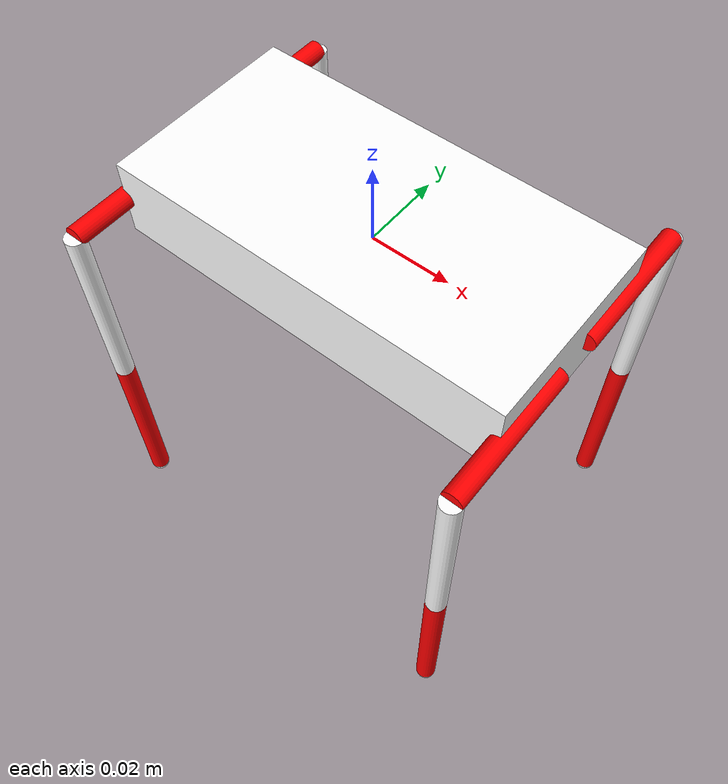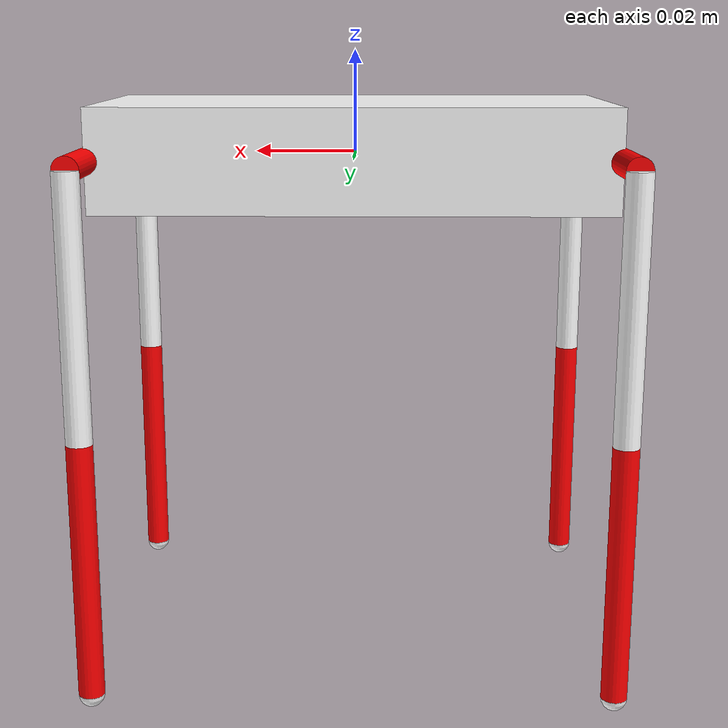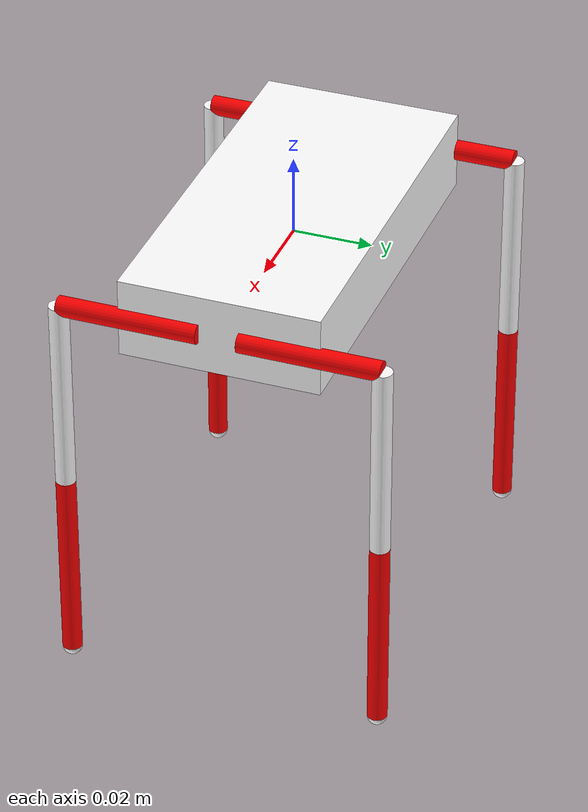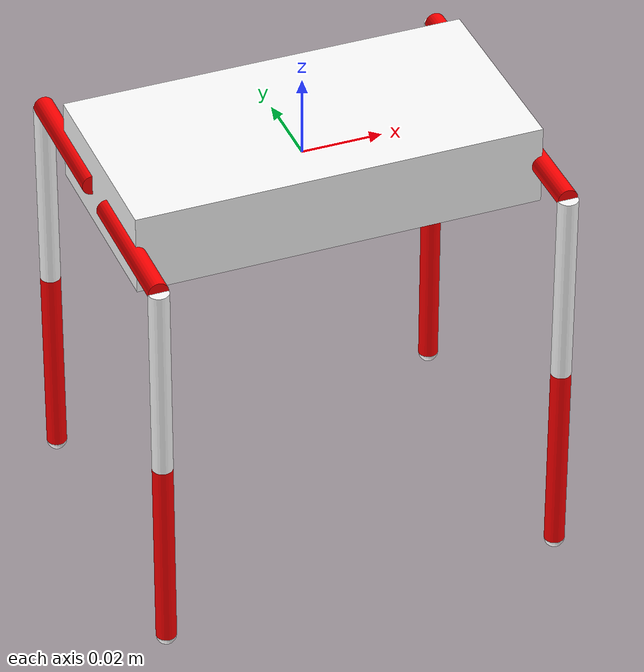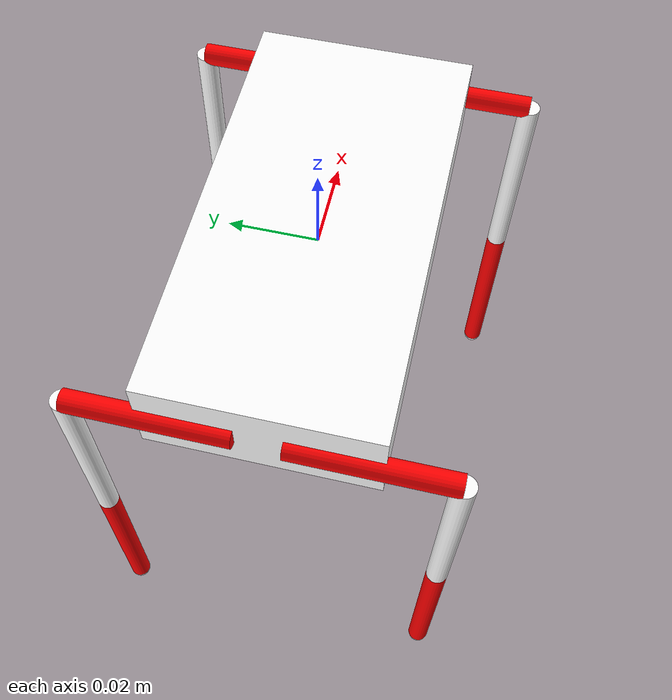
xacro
<?xml version="1.0"?>

<robot name="quadruped_9g" xmlns:xacro="http://ros.org/wiki/xacro">
    <xacro:property name="shoul_len" value="0.035" />
    <xacro:property name="thigh_len" value="0.05" />
    <xacro:property name="shank_len" value="0.05" />
    <xacro:property name="link_radius" value="0.0025"/>
    <xacro:property name="feet_radius" value="0.0025"/>
    <xacro:property name="pi" value="3.1415" />
    <xacro:property name="body_len" value="0.1" />
    <xacro:property name="body_width" value="0.05" />
    <xacro:property name="body_height" value="0.02" />

    <material name="red">
        <color rgba="1 0 0 1"/>
    </material>

    <material name="white">
        <color rgba="1 1 1 1"/>
    </material>

    <xacro:macro name="default_inertial" params="mass">
        <inertial>
            <mass value="${mass}" />
            <inertia ixx="1.0" ixy="0.0" ixz="0.0" iyy="1.0" iyz="0.0" izz="1.0" />
        </inertial>
    </xacro:macro>

    <link name="base_link">
        <visual>
            <geometry>
                <box size="${body_len} ${body_width} ${body_height}" />
            </geometry>
            <material name="white"/>
        </visual>
        <xacro:default_inertial mass="10" />
    </link>

    <xacro:macro name="leg" params="suffix front left">
        <link name="shoulder_link_${suffix}">
            <visual>
                <geometry>
                    <cylinder length="${shoul_len}" radius="${link_radius}"/>
                </geometry>
                <origin rpy="${pi*0.5} 0 0" xyz="0 ${0.5*left*shoul_len} 0"/>
                <material name="red"/>
            </visual>
            <xacro:default_inertial mass="2"/>
        </link>
        <joint name="shoulder_joint_${suffix}" type="revolute">
            <axis xyz="1 0 0"/>
            <limit effort="1000.0" lower="${-0.5*pi}" upper="${0.5*pi}" velocity="0.5"/>
            <parent link="base_link"/>
            <child link="shoulder_link_${suffix}"/>
            <origin xyz="${0.5*body_len*front} ${left*0.005} 0"/>
        </joint>

        <link name="thigh_link_${suffix}">
            <visual>
                <geometry>
                    <cylinder length="${thigh_len}" radius="${link_radius}"/>
                </geometry>
                <origin rpy="0 0 0" xyz="0 0 ${-0.5*thigh_len}"/>
                <material name="white"/>
            </visual>
            <xacro:default_inertial mass="2"/>
        </link>
        <joint name="elbow_joint_${suffix}" type="revolute">
            <axis xyz="0 1 0"/>
            <limit effort="1000.0" lower="${-0.5*pi}" upper="${0.5*pi}" velocity="0.5"/>
            <parent link="shoulder_link_${suffix}"/>
            <child link="thigh_link_${suffix}"/>
            <origin xyz="0 ${left*shoul_len} 0"/>
        </joint>

        <link name="shank_link_${suffix}">
            <visual>
                <geometry>
                    <cylinder length="${shank_len}" radius="${link_radius}"/>
                </geometry>
                <origin rpy="0 0 0" xyz="0 0 ${-0.5*shank_len}"/>
                <material name="red"/>
            </visual>
            <xacro:default_inertial mass="2"/>
        </link>
        <joint name="wrist_joint_${suffix}" type="revolute">
            <axis xyz="0 1 0"/>
            <limit effort="1000.0" lower="${-0.5*pi}" upper="0.0" velocity="0.5"/>
            <parent link="thigh_link_${suffix}"/>
            <child link="shank_link_${suffix}"/>
            <origin xyz="0 0 ${-thigh_len}"/>
        </joint>

        <link name="feet_link_${suffix}">
            <visual>
                <geometry>
                    <sphere radius="${feet_radius}"/>
                </geometry>
                <origin rpy="0 0 0" xyz="0 0 0"/>
                <material name="white"/>
            </visual>
            <xacro:default_inertial mass="0.2"/>
        </link>
        <joint name="ankle_joint_${suffix}" type="revolute">
            <axis xyz="0 1 0"/>
            <limit effort="1000.0" lower="${-0.5*pi}" upper="${0.5*pi}" velocity="0.5"/>
            <parent link="shank_link_${suffix}"/>
            <child link="feet_link_${suffix}"/>
            <origin xyz="0 0 ${-shank_len}"/>
        </joint>

        <link name="shoe_link_${suffix}">
            <visual>
                <geometry>
                    <sphere radius="${feet_radius}"/>
                </geometry>
                <origin rpy="0 0 0" xyz="0 0 0"/>
                <material name="white"/>
            </visual>
            <xacro:default_inertial mass="0.2"/>
        </link>
        <joint name="shoe_joint_${suffix}" type="revolute">
            <axis xyz="0 0 1"/>
            <limit effort="1000.0" lower="${-0.5*pi}" upper="${0.5*pi}" velocity="0.5"/>
            <parent link="feet_link_${suffix}"/>
            <child link="shoe_link_${suffix}"/>
            <origin xyz="0 0 0"/>
        </joint>

    </xacro:macro>
    <xacro:leg suffix="lf" front="1" left="1" />
    <xacro:leg suffix="rf" front="1" left="-1" />
    <xacro:leg suffix="lb" front="-1" left="1" />
    <xacro:leg suffix="rb" front="-1" left="-1" />

</robot>
